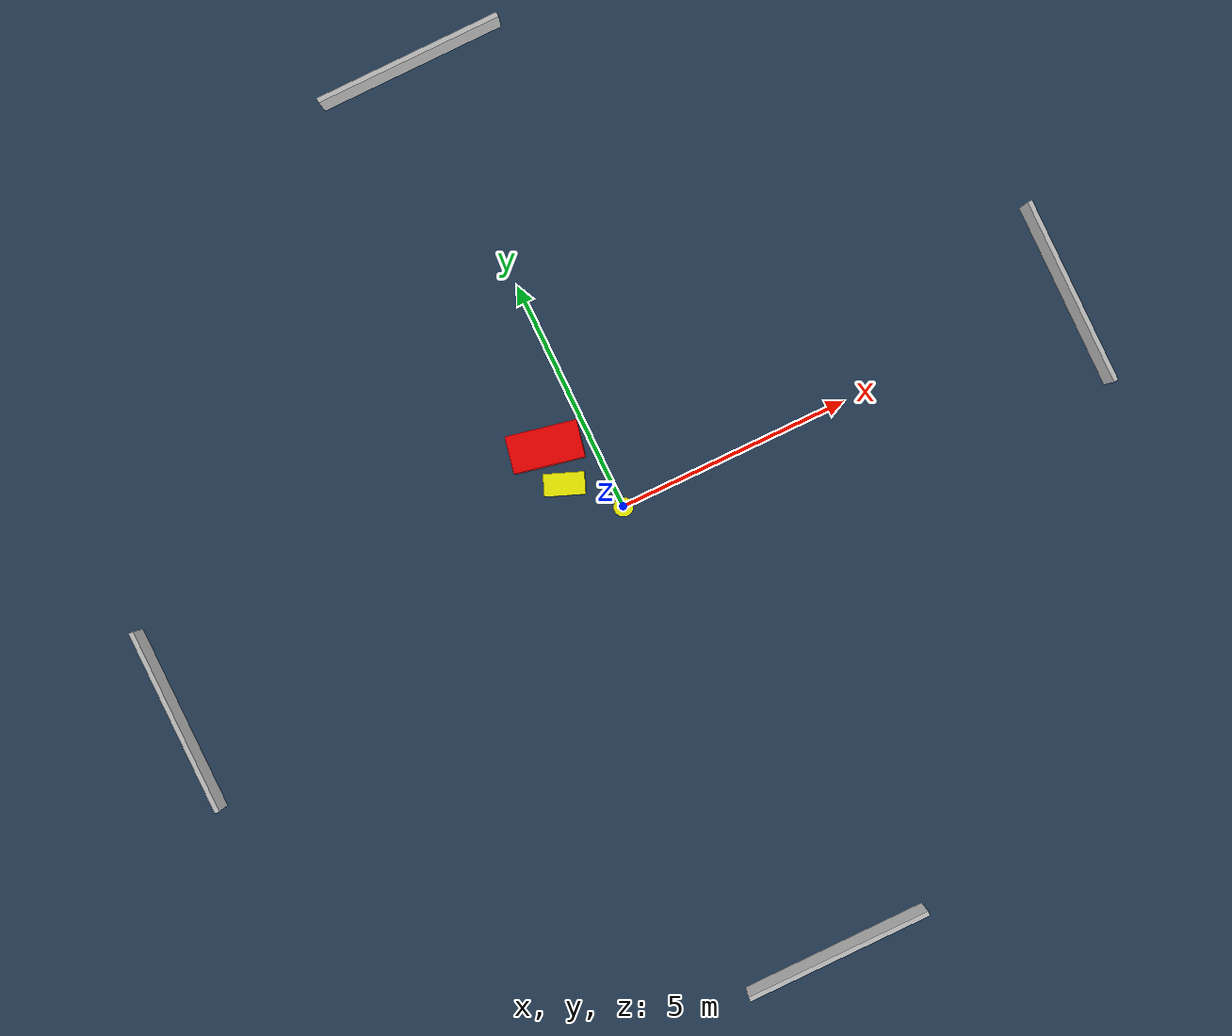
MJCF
<?xml version="1.0" ?>
<mujoco model="generated_environment">
  <option timestep="0.01" integrator="RK4" cone="elliptic"/>
  <default>
    <geom density="1"/>
  </default>
  <asset>
    <texture builtin="gradient" height="3072" name="skybox" rgb1="0.3 0.5 0.7" rgb2="0 0 0" type="skybox" width="512"/>
    <texture builtin="checker" height="300" name="groundplane" rgb1="0.2 0.3 0.4" rgb2="0.1 0.2 0.3" type="2d" width="300"/>
    <material name="groundplane" reflectance="0.2" texrepeat="5 5" texture="groundplane"/>
  </asset>
  <worldbody>
    <light dir="0 0 -1" directional="true" pos="0 0 1.5"/>
    <geom condim="3" friction="0.5 0.005 0.001" material="groundplane" name="floor" pos="0 0 0" size="0 0 0.05" type="plane"/>
    <body name="walls">
      <geom name="wall_1" condim="4" pos="-10.0 0.0 0.3" rgba="0.800000011920929 0.800000011920929 0.800000011920929 1.0" size="0.05 2.0 0.3" type="box"/>
      <geom name="wall_2" condim="4" pos="10.0 0.0 0.3" rgba="0.800000011920929 0.800000011920929 0.800000011920929 1.0" size="0.05 2.0 0.3" type="box"/>
      <geom name="wall_3" condim="4" pos="0.0 -10.0 0.3" rgba="0.800000011920929 0.800000011920929 0.800000011920929 1.0" size="2.0 0.05 0.3" type="box"/>
      <geom name="wall_4" condim="4" pos="0.0 10.0 0.3" rgba="0.800000011920929 0.800000011920929 0.800000011920929 1.0" size="2.0 0.05 0.3" type="box"/>
    </body>
    <body name="robot">
      <joint name="joint_x" type="slide" pos="0 0 0" axis="1 0 0"/>
      <joint name="joint_y" type="slide" pos="0 0 0" axis="0 1 0"/>
      <geom name="robot" type="cylinder" pos="0.0 0.0 0.2" size="0.2 0.2 0.0" mass="5.0" friction="1.0 0.005 0.0001" condim="4" rgba="1.0 1.0 0.0 1.0"/>
    </body>
    <body name="obstacle_1_movable">
      <geom name="obstacle_1_movable" condim="4" pos="-0.8714144436750381 0.9284448132554878 0.3" euler="0 0 248.4135649637329" friction="0.0 0.005 0.001" rgba="1.0 1.0 0.0 1.0" size="0.22719060632903626 0.417455588048935 0.3" type="box" mass="0.1"/>
      <joint type="free"/>
    </body>
    <body name="obstacle_2_static">
      <geom name="obstacle_2_static" condim="4" pos="-0.8951801121438646 1.7720930414736034 0.3" euler="0 0 78.22619337876509" friction="0.0 0.005 0.001" rgba="1.0 0.0 0.0 1.0" size="0.3820727897995667 0.7385340077871605 0.3" type="box"/>
    </body>
  </worldbody>
  <actuator>
    <motor name="actuator_x" joint="joint_x" gear="1" ctrlrange="-1 1"/>
    <motor name="actuator_y" joint="joint_y" gear="1" ctrlrange="-1 1"/>
  </actuator>
</mujoco>
